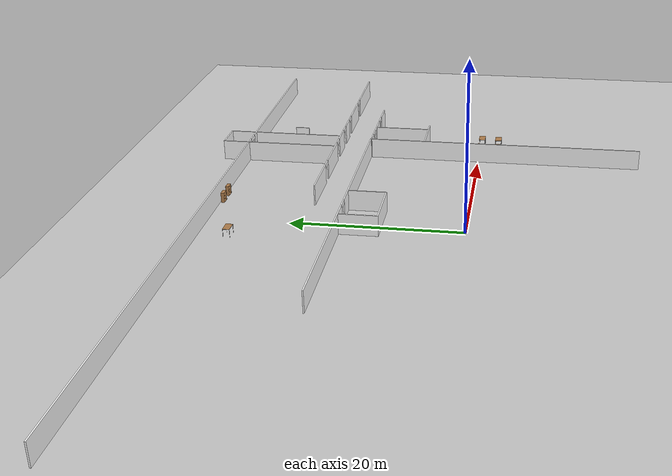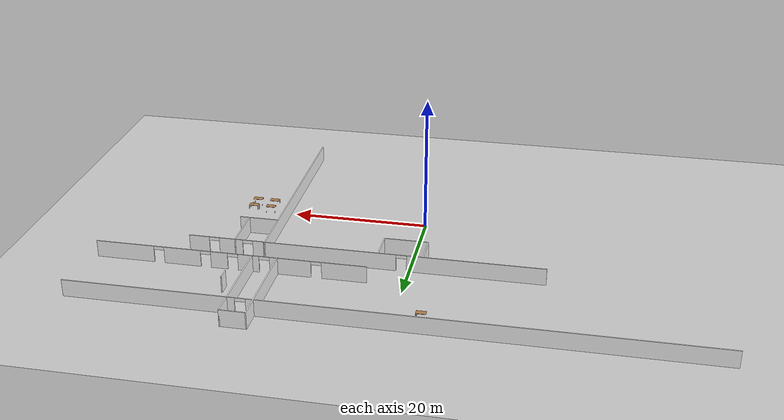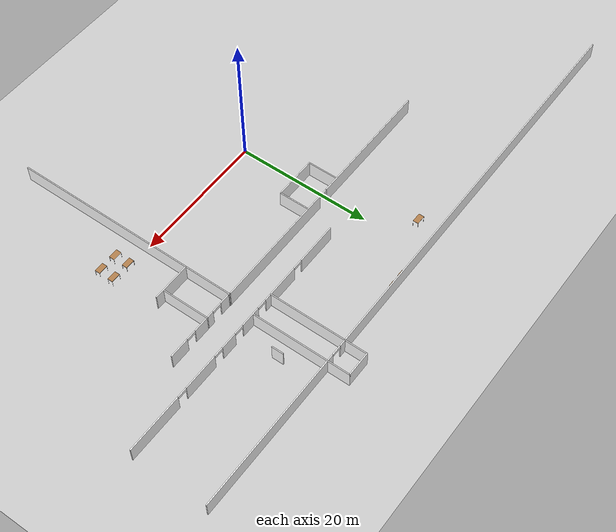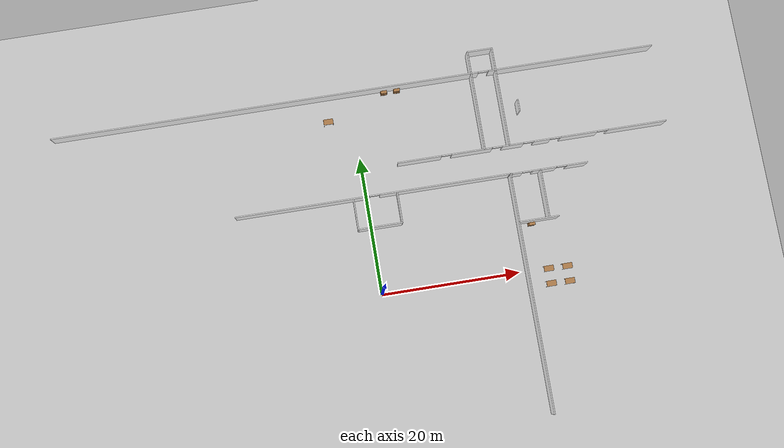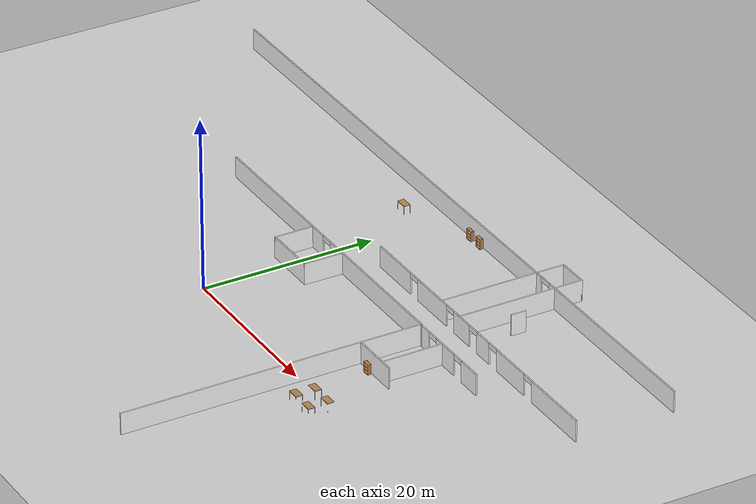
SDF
<sdf version="1.6">
 <world name="default">
  <model name="ground_plane">
   <static>1</static>
   <link name="link">
    <collision name="collision">
     <geometry><plane><normal>0 0 1</normal><size>100 100</size></plane></geometry>
     <surface><friction><ode><mu>100</mu><mu2>50</mu2></ode></friction></surface>
    </collision>
    <visual name="visual">
     <cast_shadows>0</cast_shadows>
     <geometry><plane><normal>0 0 1</normal><size>100 100</size></plane></geometry>
     <material>
      <script>
       <uri>model://office_env/materials/scripts</uri>
       <uri>model://office_env/materials/textures</uri>
       <name>wall</name>
      </script>
     </material>
    </visual>
   </link>
  </model>
  <model name="aule_N">
   <pose>0.1887 -1.4289 0 0 -0 0</pose>
   <link name="Wall_103">
    <pose>26.3919 15.3997 0 0 -0 3.14159</pose>
    <visual name="Wall_103_Visual_0">
     <pose>-4.01282 0 1.25 0 -0 0</pose>
     <geometry><box><size>2.97436 0.15 2.5</size></box></geometry>
     <material>
      <script>
       <uri>model://office_env/materials/scripts</uri>
       <uri>model://office_env/materials/textures</uri>
       <name>wall</name>
      </script>
      <ambient>1 1 1 1</ambient>
     </material>
    </visual>
    <collision name="Wall_103_Collision_0">
     <geometry><box><size>2.97436 0.15 2.5</size></box></geometry>
     <pose>-4.01282 0 1.25 0 -0 0</pose>
    </collision>
    <visual name="Wall_103_Visual_1">
     <pose>0.712222 0 1.25 0 -0 0</pose>
     <geometry><box><size>3.47573 0.15 2.5</size></box></geometry>
     <material>
      <script>
       <uri>model://office_env/materials/scripts</uri>
       <uri>model://office_env/materials/textures</uri>
       <name>wall</name>
      </script>
      <ambient>1 1 1 1</ambient>
     </material>
    </visual>
    <collision name="Wall_103_Collision_1">
     <geometry><box><size>3.47573 0.15 2.5</size></box></geometry>
     <pose>0.712222 0 1.25 0 -0 0</pose>
    </collision>
    <visual name="Wall_103_Visual_2">
     <pose>4.72504 0 1.25 0 -0 0</pose>
     <geometry><box><size>1.54991 0.15 2.5</size></box></geometry>
     <material>
      <script>
       <uri>model://office_env/materials/scripts</uri>
       <uri>model://office_env/materials/textures</uri>
       <name>wall</name>
      </script>
      <ambient>1 1 1 1</ambient>
     </material>
    </visual>
    <collision name="Wall_103_Collision_2">
     <geometry><box><size>1.54991 0.15 2.5</size></box></geometry>
     <pose>4.72504 0 1.25 0 -0 0</pose>
    </collision>
    <visual name="Wall_103_Visual_3">
     <pose>-1.77564 0 2.25 0 -0 0</pose>
     <geometry><box><size>1.5 0.15 0.5</size></box></geometry>
     <material>
      <script>
       <uri>model://office_env/materials/scripts</uri>
       <uri>model://office_env/materials/textures</uri>
       <name>wall</name>
      </script>
      <ambient>1 1 1 1</ambient>
     </material>
    </visual>
    <collision name="Wall_103_Collision_3">
     <geometry><box><size>1.5 0.15 0.5</size></box></geometry>
     <pose>-1.77564 0 2.25 0 -0 0</pose>
    </collision>
    <visual name="Wall_103_Visual_4">
     <pose>3.20009 0 2.25 0 -0 0</pose>
     <geometry><box><size>1.5 0.15 0.5</size></box></geometry>
     <material>
      <script>
       <uri>model://office_env/materials/scripts</uri>
       <uri>model://office_env/materials/textures</uri>
       <name>wall</name>
      </script>
      <ambient>1 1 1 1</ambient>
     </material>
    </visual>
    <collision name="Wall_103_Collision_4">
     <geometry><box><size>1.5 0.15 0.5</size></box></geometry>
     <pose>3.20009 0 2.25 0 -0 0</pose>
    </collision>
   </link>
   <link name="Wall_104">
    <collision name="Wall_104_Collision">
     <geometry><box><size>0.5 0.15 2.5</size></box></geometry>
     <pose>0 0 1.25 0 -0 0</pose>
    </collision>
    <visual name="Wall_104_Visual">
     <pose>0 0 1.25 0 -0 0</pose>
     <geometry><box><size>0.5 0.15 2.5</size></box></geometry>
     <material>
      <script>
       <uri>model://office_env/materials/scripts</uri>
       <uri>model://office_env/materials/textures</uri>
       <name>wall</name>
      </script>
      <ambient>1 1 1 1</ambient>
     </material>
    </visual>
    <pose>20.7919 15.3997 0 0 -0 3.14159</pose>
   </link>
   <link name="Wall_106">
    <collision name="Wall_106_Collision">
     <geometry><box><size>7 0.15 2.5</size></box></geometry>
     <pose>0 0 1.25 0 -0 0</pose>
    </collision>
    <visual name="Wall_106_Visual">
     <pose>0 0 1.25 0 -0 0</pose>
     <geometry><box><size>7 0.15 2.5</size></box></geometry>
     <material>
      <script>
       <uri>model://office_env/materials/scripts</uri>
       <uri>model://office_env/materials/textures</uri>
       <name>wall</name>
      </script>
      <ambient>1 1 1 1</ambient>
     </material>
    </visual>
    <pose>25.0644 11.9766 0 0 0 -1.5708</pose>
   </link>
   <link name="Wall_119">
    <pose>24.6226 19.6001 0 0 -0 0</pose>
    <visual name="Wall_119_Visual_0">
     <pose>-16.4435 0 1.25 0 -0 0</pose>
     <geometry><box><size>6.36296 0.15 2.5</size></box></geometry>
     <material>
      <script>
       <uri>model://office_env/materials/scripts</uri>
       <uri>model://office_env/materials/textures</uri>
       <name>wall</name>
      </script>
      <ambient>1 1 1 1</ambient>
     </material>
    </visual>
    <collision name="Wall_119_Collision_0">
     <geometry><box><size>6.36296 0.15 2.5</size></box></geometry>
     <pose>-16.4435 0 1.25 0 -0 0</pose>
    </collision>
    <visual name="Wall_119_Visual_1">
     <pose>-8.80227 0 1.25 0 -0 0</pose>
     <geometry><box><size>5.91956 0.15 2.5</size></box></geometry>
     <material>
      <script>
       <uri>model://office_env/materials/scripts</uri>
       <uri>model://office_env/materials/textures</uri>
       <name>wall</name>
      </script>
      <ambient>1 1 1 1</ambient>
     </material>
    </visual>
    <collision name="Wall_119_Collision_1">
     <geometry><box><size>5.91956 0.15 2.5</size></box></geometry>
     <pose>-8.80227 0 1.25 0 -0 0</pose>
    </collision>
    <visual name="Wall_119_Visual_2">
     <pose>-2.80072 0 1.25 0 -0 0</pose>
     <geometry><box><size>3.08352 0.15 2.5</size></box></geometry>
     <material>
      <script>
       <uri>model://office_env/materials/scripts</uri>
       <uri>model://office_env/materials/textures</uri>
       <name>wall</name>
      </script>
      <ambient>1 1 1 1</ambient>
     </material>
    </visual>
    <collision name="Wall_119_Collision_2">
     <geometry><box><size>3.08352 0.15 2.5</size></box></geometry>
     <pose>-2.80072 0 1.25 0 -0 0</pose>
    </collision>
    <visual name="Wall_119_Visual_3">
     <pose>1.4683 0 1.25 0 -0 0</pose>
     <geometry><box><size>2.45453 0.15 2.5</size></box></geometry>
     <material>
      <script>
       <uri>model://office_env/materials/scripts</uri>
       <uri>model://office_env/materials/textures</uri>
       <name>wall</name>
      </script>
      <ambient>1 1 1 1</ambient>
     </material>
    </visual>
    <collision name="Wall_119_Collision_3">
     <geometry><box><size>2.45453 0.15 2.5</size></box></geometry>
     <pose>1.4683 0 1.25 0 -0 0</pose>
    </collision>
    <visual name="Wall_119_Visual_4">
     <pose>6.88834 0 1.25 0 -0 0</pose>
     <geometry><box><size>5.38554 0.15 2.5</size></box></geometry>
     <material>
      <script>
       <uri>model://office_env/materials/scripts</uri>
       <uri>model://office_env/materials/textures</uri>
       <name>wall</name>
      </script>
      <ambient>1 1 1 1</ambient>
     </material>
    </visual>
    <collision name="Wall_119_Collision_4">
     <geometry><box><size>5.38554 0.15 2.5</size></box></geometry>
     <pose>6.88834 0 1.25 0 -0 0</pose>
    </collision>
    <visual name="Wall_119_Visual_5">
     <pose>15.3531 0 1.25 0 -0 0</pose>
     <geometry><box><size>8.54389 0.15 2.5</size></box></geometry>
     <material>
      <script>
       <uri>model://office_env/materials/scripts</uri>
       <uri>model://office_env/materials/textures</uri>
       <name>wall</name>
      </script>
      <ambient>1 1 1 1</ambient>
     </material>
    </visual>
    <collision name="Wall_119_Collision_5">
     <geometry><box><size>8.54389 0.15 2.5</size></box></geometry>
     <pose>15.3531 0 1.25 0 -0 0</pose>
    </collision>
    <visual name="Wall_119_Visual_6">
     <pose>-12.512 0 2.25 0 -0 0</pose>
     <geometry><box><size>1.5 0.15 0.5</size></box></geometry>
     <material>
      <script>
       <uri>model://office_env/materials/scripts</uri>
       <uri>model://office_env/materials/textures</uri>
       <name>wall</name>
      </script>
      <ambient>1 1 1 1</ambient>
     </material>
    </visual>
    <collision name="Wall_119_Collision_6">
     <geometry><box><size>1.5 0.15 0.5</size></box></geometry>
     <pose>-12.512 0 2.25 0 -0 0</pose>
    </collision>
    <visual name="Wall_119_Visual_7">
     <pose>-5.09248 0 2.25 0 -0 0</pose>
     <geometry><box><size>1.5 0.15 0.5</size></box></geometry>
     <material>
      <script>
       <uri>model://office_env/materials/scripts</uri>
       <uri>model://office_env/materials/textures</uri>
       <name>wall</name>
      </script>
      <ambient>1 1 1 1</ambient>
     </material>
    </visual>
    <collision name="Wall_119_Collision_7">
     <geometry><box><size>1.5 0.15 0.5</size></box></geometry>
     <pose>-5.09248 0 2.25 0 -0 0</pose>
    </collision>
    <visual name="Wall_119_Visual_8">
     <pose>-0.508963 0 2.25 0 -0 0</pose>
     <geometry><box><size>1.5 0.15 0.5</size></box></geometry>
     <material>
      <script>
       <uri>model://office_env/materials/scripts</uri>
       <uri>model://office_env/materials/textures</uri>
       <name>wall</name>
      </script>
      <ambient>1 1 1 1</ambient>
     </material>
    </visual>
    <collision name="Wall_119_Collision_8">
     <geometry><box><size>1.5 0.15 0.5</size></box></geometry>
     <pose>-0.508963 0 2.25 0 -0 0</pose>
    </collision>
    <visual name="Wall_119_Visual_9">
     <pose>3.44557 0 2.25 0 -0 0</pose>
     <geometry><box><size>1.5 0.15 0.5</size></box></geometry>
     <material>
      <script>
       <uri>model://office_env/materials/scripts</uri>
       <uri>model://office_env/materials/textures</uri>
       <name>wall</name>
      </script>
      <ambient>1 1 1 1</ambient>
     </material>
    </visual>
    <collision name="Wall_119_Collision_9">
     <geometry><box><size>1.5 0.15 0.5</size></box></geometry>
     <pose>3.44557 0 2.25 0 -0 0</pose>
    </collision>
    <visual name="Wall_119_Visual_10">
     <pose>10.3311 0 2.25 0 -0 0</pose>
     <geometry><box><size>1.5 0.15 0.5</size></box></geometry>
     <material>
      <script>
       <uri>model://office_env/materials/scripts</uri>
       <uri>model://office_env/materials/textures</uri>
       <name>wall</name>
      </script>
      <ambient>1 1 1 1</ambient>
     </material>
    </visual>
    <collision name="Wall_119_Collision_10">
     <geometry><box><size>1.5 0.15 0.5</size></box></geometry>
     <pose>10.3311 0 2.25 0 -0 0</pose>
    </collision>
   </link>
   <link name="Wall_142">
    <collision name="Wall_142_Collision">
     <geometry><box><size>14.75 0.15 2.5</size></box></geometry>
     <pose>0 0 1.25 0 -0 0</pose>
    </collision>
    <visual name="Wall_142_Visual">
     <pose>0 0 1.25 0 -0 0</pose>
     <geometry><box><size>14.75 0.15 2.5</size></box></geometry>
     <material>
      <script>
       <uri>model://office_env/materials/scripts</uri>
       <uri>model://office_env/materials/textures</uri>
       <name>wall</name>
      </script>
      <ambient>1 1 1 1</ambient>
     </material>
    </visual>
    <pose>17.6842 26.9006 0 0 -0 1.5708</pose>
   </link>
   <link name="Wall_143">
    <collision name="Wall_143_Collision">
     <geometry><box><size>3.75 0.15 2.5</size></box></geometry>
     <pose>0 0 1.25 0 -0 0</pose>
    </collision>
    <visual name="Wall_143_Visual">
     <pose>0 0 1.25 0 -0 0</pose>
     <geometry><box><size>3.75 0.15 2.5</size></box></geometry>
     <material>
      <script>
       <uri>model://office_env/materials/scripts</uri>
       <uri>model://office_env/materials/textures</uri>
       <name>wall</name>
      </script>
      <ambient>1 1 1 1</ambient>
     </material>
    </visual>
    <pose>19.4842 34.2006 0 0 -0 0</pose>
   </link>
   <link name="Wall_144">
    <collision name="Wall_144_Collision">
     <geometry><box><size>14.75 0.15 2.5</size></box></geometry>
     <pose>0 0 1.25 0 -0 0</pose>
    </collision>
    <visual name="Wall_144_Visual">
     <pose>0 0 1.25 0 -0 0</pose>
     <geometry><box><size>14.75 0.15 2.5</size></box></geometry>
     <material>
      <script>
       <uri>model://office_env/materials/scripts</uri>
       <uri>model://office_env/materials/textures</uri>
       <name>wall</name>
      </script>
      <ambient>1 1 1 1</ambient>
     </material>
    </visual>
    <pose>21.2842 26.9006 0 0 0 -1.5708</pose>
   </link>
   <link name="Wall_147">
    <collision name="Wall_147_Collision">
     <geometry><box><size>4.5 0.15 2.5</size></box></geometry>
     <pose>0 0 1.25 0 -0 0</pose>
    </collision>
    <visual name="Wall_147_Visual">
     <pose>0 0 1.25 0 -0 0</pose>
     <geometry><box><size>4.5 0.15 2.5</size></box></geometry>
     <material>
      <script>
       <uri>model://office_env/materials/scripts</uri>
       <uri>model://office_env/materials/textures</uri>
       <name>wall</name>
      </script>
      <ambient>1 1 1 1</ambient>
     </material>
    </visual>
    <pose>-2.1259 13.1481 0 0 0 -1.5708</pose>
   </link>
   <link name="Wall_148">
    <collision name="Wall_148_Collision">
     <geometry><box><size>6.5 0.15 2.5</size></box></geometry>
     <pose>0 0 1.25 0 -0 0</pose>
    </collision>
    <visual name="Wall_148_Visual">
     <pose>0 0 1.25 0 -0 0</pose>
     <geometry><box><size>6.5 0.15 2.5</size></box></geometry>
     <material>
      <script>
       <uri>model://office_env/materials/scripts</uri>
       <uri>model://office_env/materials/textures</uri>
       <name>wall</name>
      </script>
      <ambient>1 1 1 1</ambient>
     </material>
    </visual>
    <pose>1.0491 10.9731 0 0 -0 0</pose>
   </link>
   <link name="Wall_149">
    <collision name="Wall_149_Collision">
     <geometry><box><size>4.5 0.15 2.5</size></box></geometry>
     <pose>0 0 1.25 0 -0 0</pose>
    </collision>
    <visual name="Wall_149_Visual">
     <pose>0 0 1.25 0 -0 0</pose>
     <geometry><box><size>4.5 0.15 2.5</size></box></geometry>
     <material>
      <script>
       <uri>model://office_env/materials/scripts</uri>
       <uri>model://office_env/materials/textures</uri>
       <name>wall</name>
      </script>
      <ambient>1 1 1 1</ambient>
     </material>
    </visual>
    <pose>4.2241 13.1481 0 0 -0 1.5708</pose>
   </link>
   <link name="Wall_172">
    <collision name="Wall_172_Collision">
     <geometry><box><size>1.75 0.15 2.5</size></box></geometry>
     <pose>0 0 1.25 0 -0 0</pose>
    </collision>
    <visual name="Wall_172_Visual">
     <pose>0 0 1.25 0 -0 0</pose>
     <geometry><box><size>1.75 0.15 2.5</size></box></geometry>
     <material>
      <script>
       <uri>model://office_env/materials/scripts</uri>
       <uri>model://office_env/materials/textures</uri>
       <name>wall</name>
      </script>
      <ambient>1 1 1 1</ambient>
     </material>
    </visual>
    <pose>23.6484 25.1953 0 0 -0 1.5708</pose>
   </link>
   <link name="Wall_42">
    <pose>0.270301 30.9455 0 0 -0 3.14159</pose>
    <visual name="Wall_42_Visual_0">
     <pose>-32.0366 0 1.25 0 -0 0</pose>
     <geometry><box><size>24.1768 0.15 2.5</size></box></geometry>
     <material>
      <script>
       <uri>model://office_env/materials/scripts</uri>
       <uri>model://office_env/materials/textures</uri>
       <name>wall</name>
      </script>
      <ambient>1 1 1 1</ambient>
     </material>
    </visual>
    <collision name="Wall_42_Collision_0">
     <geometry><box><size>24.1768 0.15 2.5</size></box></geometry>
     <pose>-32.0366 0 1.25 0 -0 0</pose>
    </collision>
    <visual name="Wall_42_Visual_1">
     <pose>12.8384 0 1.25 0 -0 0</pose>
     <geometry><box><size>62.5732 0.15 2.5</size></box></geometry>
     <material>
      <script>
       <uri>model://office_env/materials/scripts</uri>
       <uri>model://office_env/materials/textures</uri>
       <name>wall</name>
      </script>
      <ambient>1 1 1 1</ambient>
     </material>
    </visual>
    <collision name="Wall_42_Collision_1">
     <geometry><box><size>62.5732 0.15 2.5</size></box></geometry>
     <pose>12.8384 0 1.25 0 -0 0</pose>
    </collision>
    <visual name="Wall_42_Visual_2">
     <pose>-19.1982 0 2.25 0 -0 0</pose>
     <geometry><box><size>1.5 0.15 0.5</size></box></geometry>
     <material>
      <script>
       <uri>model://office_env/materials/scripts</uri>
       <uri>model://office_env/materials/textures</uri>
       <name>wall</name>
      </script>
      <ambient>1 1 1 1</ambient>
     </material>
    </visual>
    <collision name="Wall_42_Collision_2">
     <geometry><box><size>1.5 0.15 0.5</size></box></geometry>
     <pose>-19.1982 0 2.25 0 -0 0</pose>
    </collision>
   </link>
   <link name="Wall_47">
    <collision name="Wall_47_Collision">
     <geometry><box><size>34.5 0.15 2.5</size></box></geometry>
     <pose>0 0 1.25 0 -0 0</pose>
    </collision>
    <visual name="Wall_47_Visual">
     <pose>0 0 1.25 0 -0 0</pose>
     <geometry><box><size>34.5 0.15 2.5</size></box></geometry>
     <material>
      <script>
       <uri>model://office_env/materials/scripts</uri>
       <uri>model://office_env/materials/textures</uri>
       <name>wall</name>
      </script>
      <ambient>1 1 1 1</ambient>
     </material>
    </visual>
    <pose>20.6929 -1.71111 0 0 -0 1.5708</pose>
   </link>
   <link name="Wall_48">
    <pose>0.767861 15.4639 0 0 -0 3.14159</pose>
    <visual name="Wall_48_Visual_0">
     <pose>-10.4634 0 1.25 0 -0 0</pose>
     <geometry><box><size>19.0732 0.15 2.5</size></box></geometry>
     <material>
      <script>
       <uri>model://office_env/materials/scripts</uri>
       <uri>model://office_env/materials/textures</uri>
       <name>wall</name>
      </script>
      <ambient>1 1 1 1</ambient>
     </material>
    </visual>
    <collision name="Wall_48_Collision_0">
     <geometry><box><size>19.0732 0.15 2.5</size></box></geometry>
     <pose>-10.4634 0 1.25 0 -0 0</pose>
    </collision>
    <visual name="Wall_48_Visual_1">
     <pose>10.2866 0 1.25 0 -0 0</pose>
     <geometry><box><size>19.4268 0.15 2.5</size></box></geometry>
     <material>
      <script>
       <uri>model://office_env/materials/scripts</uri>
       <uri>model://office_env/materials/textures</uri>
       <name>wall</name>
      </script>
      <ambient>1 1 1 1</ambient>
     </material>
    </visual>
    <collision name="Wall_48_Collision_1">
     <geometry><box><size>19.4268 0.15 2.5</size></box></geometry>
     <pose>10.2866 0 1.25 0 -0 0</pose>
    </collision>
    <visual name="Wall_48_Visual_2">
     <pose>-0.176821 0 2.25 0 -0 0</pose>
     <geometry><box><size>1.5 0.15 0.5</size></box></geometry>
     <material>
      <script>
       <uri>model://office_env/materials/scripts</uri>
       <uri>model://office_env/materials/textures</uri>
       <name>wall</name>
      </script>
      <ambient>1 1 1 1</ambient>
     </material>
    </visual>
    <collision name="Wall_48_Collision_2">
     <geometry><box><size>1.5 0.15 0.5</size></box></geometry>
     <pose>-0.176821 0 2.25 0 -0 0</pose>
    </collision>
   </link>
   <link name="Wall_70">
    <collision name="Wall_70_Collision">
     <geometry><box><size>5.75 0.15 2.5</size></box></geometry>
     <pose>0 0 1.25 0 -0 0</pose>
    </collision>
    <visual name="Wall_70_Visual">
     <pose>0 0 1.25 0 -0 0</pose>
     <geometry><box><size>5.75 0.15 2.5</size></box></geometry>
     <material>
      <script>
       <uri>model://office_env/materials/scripts</uri>
       <uri>model://office_env/materials/textures</uri>
       <name>wall</name>
      </script>
      <ambient>1 1 1 1</ambient>
     </material>
    </visual>
    <pose>23.5919 8.40989 0 0 -0 0</pose>
   </link>
   <static>1</static>
  </model>
  <model name="bookshelf_1">
   <static>1</static>
   <link name="link">
    <inertial><mass>1</mass></inertial>
    <collision name="back">
     <pose>0 0.005 0.6 0 -0 0</pose>
     <geometry><box><size>0.9 0.01 1.2</size></box></geometry>
    </collision>
    <visual name="visual1">
     <pose>0 0.005 0.6 0 -0 0</pose>
     <geometry><box><size>0.9 0.01 1.2</size></box></geometry>
     <material>
      <script><uri>file://media/materials/scripts/gazebo.material</uri><name>Gazebo/Wood</name></script>
     </material>
    </visual>
    <collision name="left_side">
     <pose>0.45 -0.195 0.6 0 -0 0</pose>
     <geometry><box><size>0.02 0.4 1.2</size></box></geometry>
    </collision>
    <visual name="visual2">
     <pose>0.45 -0.195 0.6 0 -0 0</pose>
     <geometry><box><size>0.02 0.4 1.2</size></box></geometry>
     <material>
      <script><uri>file://media/materials/scripts/gazebo.material</uri><name>Gazebo/Wood</name></script>
     </material>
    </visual>
    <collision name="right_side">
     <pose>-0.45 -0.195 0.6 0 -0 0</pose>
     <geometry><box><size>0.02 0.4 1.2</size></box></geometry>
    </collision>
    <visual name="visual3">
     <pose>-0.45 -0.195 0.6 0 -0 0</pose>
     <geometry><box><size>0.02 0.4 1.2</size></box></geometry>
     <material>
      <script><uri>file://media/materials/scripts/gazebo.material</uri><name>Gazebo/Wood</name></script>
     </material>
    </visual>
    <collision name="bottom">
     <pose>0 -0.195 0.03 0 -0 0</pose>
     <geometry><box><size>0.88 0.4 0.06</size></box></geometry>
    </collision>
    <visual name="visual4">
     <pose>0 -0.195 0.03 0 -0 0</pose>
     <geometry><box><size>0.88 0.4 0.06</size></box></geometry>
     <material>
      <script><uri>file://media/materials/scripts/gazebo.material</uri><name>Gazebo/Wood</name></script>
     </material>
    </visual>
    <collision name="top">
     <pose>0 -0.195 1.19 0 -0 0</pose>
     <geometry><box><size>0.88 0.4 0.02</size></box></geometry>
    </collision>
    <visual name="visual5">
     <pose>0 -0.195 1.19 0 -0 0</pose>
     <geometry><box><size>0.88 0.4 0.02</size></box></geometry>
     <material>
      <script><uri>file://media/materials/scripts/gazebo.material</uri><name>Gazebo/Wood</name></script>
     </material>
    </visual>
    <collision name="low_shelf">
     <pose>0 -0.195 0.43 0 -0 0</pose>
     <geometry><box><size>0.88 0.4 0.02</size></box></geometry>
    </collision>
    <visual name="visual6">
     <pose>0 -0.195 0.43 0 -0 0</pose>
     <geometry><box><size>0.88 0.4 0.02</size></box></geometry>
     <material>
      <script><uri>file://media/materials/scripts/gazebo.material</uri><name>Gazebo/Wood</name></script>
     </material>
    </visual>
    <collision name="high_shelf">
     <pose>0 -0.195 0.8 0 -0 0</pose>
     <geometry><box><size>0.88 0.4 0.02</size></box></geometry>
    </collision>
    <visual name="visual7">
     <pose>0 -0.195 0.8 0 -0 0</pose>
     <geometry><box><size>0.88 0.4 0.02</size></box></geometry>
     <material>
      <script><uri>file://media/materials/scripts/gazebo.material</uri><name>Gazebo/Wood</name></script>
     </material>
    </visual>
   </link>
   <pose>6.87257 29.3246 0 0 -0 0</pose>
  </model>
  <model name="bookshelf_2">
   <static>1</static>
   <link name="link">
    <inertial><mass>1</mass></inertial>
    <collision name="back">
     <pose>0 0.005 0.6 0 -0 0</pose>
     <geometry><box><size>0.9 0.01 1.2</size></box></geometry>
    </collision>
    <visual name="visual1">
     <pose>0 0.005 0.6 0 -0 0</pose>
     <geometry><box><size>0.9 0.01 1.2</size></box></geometry>
     <material>
      <script><uri>file://media/materials/scripts/gazebo.material</uri><name>Gazebo/Wood</name></script>
     </material>
    </visual>
    <collision name="left_side">
     <pose>0.45 -0.195 0.6 0 -0 0</pose>
     <geometry><box><size>0.02 0.4 1.2</size></box></geometry>
    </collision>
    <visual name="visual2">
     <pose>0.45 -0.195 0.6 0 -0 0</pose>
     <geometry><box><size>0.02 0.4 1.2</size></box></geometry>
     <material>
      <script><uri>file://media/materials/scripts/gazebo.material</uri><name>Gazebo/Wood</name></script>
     </material>
    </visual>
    <collision name="right_side">
     <pose>-0.45 -0.195 0.6 0 -0 0</pose>
     <geometry><box><size>0.02 0.4 1.2</size></box></geometry>
    </collision>
    <visual name="visual3">
     <pose>-0.45 -0.195 0.6 0 -0 0</pose>
     <geometry><box><size>0.02 0.4 1.2</size></box></geometry>
     <material>
      <script><uri>file://media/materials/scripts/gazebo.material</uri><name>Gazebo/Wood</name></script>
     </material>
    </visual>
    <collision name="bottom">
     <pose>0 -0.195 0.03 0 -0 0</pose>
     <geometry><box><size>0.88 0.4 0.06</size></box></geometry>
    </collision>
    <visual name="visual4">
     <pose>0 -0.195 0.03 0 -0 0</pose>
     <geometry><box><size>0.88 0.4 0.06</size></box></geometry>
     <material>
      <script><uri>file://media/materials/scripts/gazebo.material</uri><name>Gazebo/Wood</name></script>
     </material>
    </visual>
    <collision name="top">
     <pose>0 -0.195 1.19 0 -0 0</pose>
     <geometry><box><size>0.88 0.4 0.02</size></box></geometry>
    </collision>
    <visual name="visual5">
     <pose>0 -0.195 1.19 0 -0 0</pose>
     <geometry><box><size>0.88 0.4 0.02</size></box></geometry>
     <material>
      <script><uri>file://media/materials/scripts/gazebo.material</uri><name>Gazebo/Wood</name></script>
     </material>
    </visual>
    <collision name="low_shelf">
     <pose>0 -0.195 0.43 0 -0 0</pose>
     <geometry><box><size>0.88 0.4 0.02</size></box></geometry>
    </collision>
    <visual name="visual6">
     <pose>0 -0.195 0.43 0 -0 0</pose>
     <geometry><box><size>0.88 0.4 0.02</size></box></geometry>
     <material>
      <script><uri>file://media/materials/scripts/gazebo.material</uri><name>Gazebo/Wood</name></script>
     </material>
    </visual>
    <collision name="high_shelf">
     <pose>0 -0.195 0.8 0 -0 0</pose>
     <geometry><box><size>0.88 0.4 0.02</size></box></geometry>
    </collision>
    <visual name="visual7">
     <pose>0 -0.195 0.8 0 -0 0</pose>
     <geometry><box><size>0.88 0.4 0.02</size></box></geometry>
     <material>
      <script><uri>file://media/materials/scripts/gazebo.material</uri><name>Gazebo/Wood</name></script>
     </material>
    </visual>
   </link>
   <pose>4.97402 29.3179 0 0 -0 0</pose>
  </model>
  <model name="bookshelf_5">
   <static>1</static>
   <link name="link">
    <inertial><mass>1</mass></inertial>
    <collision name="back">
     <pose>0 0.005 0.6 0 -0 0</pose>
     <geometry><box><size>0.9 0.01 1.2</size></box></geometry>
    </collision>
    <visual name="visual1">
     <pose>0 0.005 0.6 0 -0 0</pose>
     <geometry><box><size>0.9 0.01 1.2</size></box></geometry>
     <material>
      <script><uri>file://media/materials/scripts/gazebo.material</uri><name>Gazebo/Wood</name></script>
     </material>
    </visual>
    <collision name="left_side">
     <pose>0.45 -0.195 0.6 0 -0 0</pose>
     <geometry><box><size>0.02 0.4 1.2</size></box></geometry>
    </collision>
    <visual name="visual2">
     <pose>0.45 -0.195 0.6 0 -0 0</pose>
     <geometry><box><size>0.02 0.4 1.2</size></box></geometry>
     <material>
      <script><uri>file://media/materials/scripts/gazebo.material</uri><name>Gazebo/Wood</name></script>
     </material>
    </visual>
    <collision name="right_side">
     <pose>-0.45 -0.195 0.6 0 -0 0</pose>
     <geometry><box><size>0.02 0.4 1.2</size></box></geometry>
    </collision>
    <visual name="visual3">
     <pose>-0.45 -0.195 0.6 0 -0 0</pose>
     <geometry><box><size>0.02 0.4 1.2</size></box></geometry>
     <material>
      <script><uri>file://media/materials/scripts/gazebo.material</uri><name>Gazebo/Wood</name></script>
     </material>
    </visual>
    <collision name="bottom">
     <pose>0 -0.195 0.03 0 -0 0</pose>
     <geometry><box><size>0.88 0.4 0.06</size></box></geometry>
    </collision>
    <visual name="visual4">
     <pose>0 -0.195 0.03 0 -0 0</pose>
     <geometry><box><size>0.88 0.4 0.06</size></box></geometry>
     <material>
      <script><uri>file://media/materials/scripts/gazebo.material</uri><name>Gazebo/Wood</name></script>
     </material>
    </visual>
    <collision name="top">
     <pose>0 -0.195 1.19 0 -0 0</pose>
     <geometry><box><size>0.88 0.4 0.02</size></box></geometry>
    </collision>
    <visual name="visual5">
     <pose>0 -0.195 1.19 0 -0 0</pose>
     <geometry><box><size>0.88 0.4 0.02</size></box></geometry>
     <material>
      <script><uri>file://media/materials/scripts/gazebo.material</uri><name>Gazebo/Wood</name></script>
     </material>
    </visual>
    <collision name="low_shelf">
     <pose>0 -0.195 0.43 0 -0 0</pose>
     <geometry><box><size>0.88 0.4 0.02</size></box></geometry>
    </collision>
    <visual name="visual6">
     <pose>0 -0.195 0.43 0 -0 0</pose>
     <geometry><box><size>0.88 0.4 0.02</size></box></geometry>
     <material>
      <script><uri>file://media/materials/scripts/gazebo.material</uri><name>Gazebo/Wood</name></script>
     </material>
    </visual>
    <collision name="high_shelf">
     <pose>0 -0.195 0.8 0 -0 0</pose>
     <geometry><box><size>0.88 0.4 0.02</size></box></geometry>
    </collision>
    <visual name="visual7">
     <pose>0 -0.195 0.8 0 -0 0</pose>
     <geometry><box><size>0.88 0.4 0.02</size></box></geometry>
     <material>
      <script><uri>file://media/materials/scripts/gazebo.material</uri><name>Gazebo/Wood</name></script>
     </material>
    </visual>
   </link>
   <pose>22.8618 6.78931 0 0 -0 0</pose>
  </model>
  <model name="table_5">
   <static>0</static>
   <link name="link">
    <collision name="surface">
     <pose>0 0 1 0 -0 0</pose>
     <geometry><box><size>1.5 0.8 0.03</size></box></geometry>
     <surface><friction><ode><mu>0.6</mu><mu2>0.6</mu2></ode></friction></surface>
    </collision>
    <visual name="visual1">
     <pose>0 0 1 0 -0 0</pose>
     <geometry><box><size>1.4 0.8 0.04</size></box></geometry>
     <material>
      <script><uri>file://media/materials/scripts/gazebo.material</uri><name>Gazebo/Wood</name></script>
     </material>
    </visual>
    <collision name="front_left_leg">
     <pose>0.68 0.38 0.5 0 -0 0</pose>
     <geometry><cylinder><radius>0.02</radius><length>1</length></cylinder></geometry>
    </collision>
    <visual name="front_left_leg">
     <pose>0.68 0.38 0.5 0 -0 0</pose>
     <geometry><cylinder><radius>0.02</radius><length>1</length></cylinder></geometry>
     <material>
      <script>
       <uri>model://office_env/materials/scripts</uri>
       <uri>model://office_env/materials/textures</uri>
       <name>wall</name>
      </script>
     </material>
    </visual>
    <collision name="front_right_leg">
     <pose>0.68 -0.38 0.5 0 -0 0</pose>
     <geometry><cylinder><radius>0.02</radius><length>1</length></cylinder></geometry>
    </collision>
    <visual name="front_right_leg">
     <pose>0.68 -0.38 0.5 0 -0 0</pose>
     <geometry><cylinder><radius>0.02</radius><length>1</length></cylinder></geometry>
     <material>
      <script>
       <uri>model://office_env/materials/scripts</uri>
       <uri>model://office_env/materials/textures</uri>
       <name>wall</name>
      </script>
     </material>
    </visual>
    <collision name="back_right_leg">
     <pose>-0.68 -0.38 0.5 0 -0 0</pose>
     <geometry><cylinder><radius>0.02</radius><length>1</length></cylinder></geometry>
    </collision>
    <visual name="back_right_leg">
     <pose>-0.68 -0.38 0.5 0 -0 0</pose>
     <geometry><cylinder><radius>0.02</radius><length>1</length></cylinder></geometry>
     <material>
      <script>
       <uri>model://office_env/materials/scripts</uri>
       <uri>model://office_env/materials/textures</uri>
       <name>wall</name>
      </script>
     </material>
    </visual>
    <collision name="back_left_leg">
     <pose>-0.68 0.38 0.5 0 -0 0</pose>
     <geometry><cylinder><radius>0.02</radius><length>1</length></cylinder></geometry>
    </collision>
    <visual name="back_left_leg">
     <pose>-0.68 0.38 0.5 0 -0 0</pose>
     <geometry><cylinder><radius>0.02</radius><length>1</length></cylinder></geometry>
     <material>
      <script>
       <uri>model://office_env/materials/scripts</uri>
       <uri>model://office_env/materials/textures</uri>
       <name>wall</name>
      </script>
     </material>
    </visual>
    <inertial>
     <inertia><ixx>1</ixx><ixy>0</ixy><ixz>0</ixz><iyy>1</iyy><iyz>0</iyz><izz>1</izz></inertia>
     <mass>1</mass>
    </inertial>
   </link>
   <pose>-3.71491 26.0335 0.009992 0 -0 0</pose>
  </model>
  <model name="table_9">
   <static>0</static>
   <link name="link">
    <collision name="surface">
     <pose>0 0 1 0 -0 0</pose>
     <geometry><box><size>1.5 0.8 0.03</size></box></geometry>
     <surface><friction><ode><mu>0.6</mu><mu2>0.6</mu2></ode></friction></surface>
    </collision>
    <visual name="visual1">
     <pose>0 0 1 0 -0 0</pose>
     <geometry><box><size>1.4 0.8 0.04</size></box></geometry>
     <material>
      <script><uri>file://media/materials/scripts/gazebo.material</uri><name>Gazebo/Wood</name></script>
     </material>
    </visual>
    <collision name="front_left_leg">
     <pose>0.68 0.38 0.5 0 -0 0</pose>
     <geometry><cylinder><radius>0.02</radius><length>1</length></cylinder></geometry>
    </collision>
    <visual name="front_left_leg">
     <pose>0.68 0.38 0.5 0 -0 0</pose>
     <geometry><cylinder><radius>0.02</radius><length>1</length></cylinder></geometry>
     <material>
      <script>
       <uri>model://office_env/materials/scripts</uri>
       <uri>model://office_env/materials/textures</uri>
       <name>wall</name>
      </script>
     </material>
    </visual>
    <collision name="front_right_leg">
     <pose>0.68 -0.38 0.5 0 -0 0</pose>
     <geometry><cylinder><radius>0.02</radius><length>1</length></cylinder></geometry>
    </collision>
    <visual name="front_right_leg">
     <pose>0.68 -0.38 0.5 0 -0 0</pose>
     <geometry><cylinder><radius>0.02</radius><length>1</length></cylinder></geometry>
     <material>
      <script>
       <uri>model://office_env/materials/scripts</uri>
       <uri>model://office_env/materials/textures</uri>
       <name>wall</name>
      </script>
     </material>
    </visual>
    <collision name="back_right_leg">
     <pose>-0.68 -0.38 0.5 0 -0 0</pose>
     <geometry><cylinder><radius>0.02</radius><length>1</length></cylinder></geometry>
    </collision>
    <visual name="back_right_leg">
     <pose>-0.68 -0.38 0.5 0 -0 0</pose>
     <geometry><cylinder><radius>0.02</radius><length>1</length></cylinder></geometry>
     <material>
      <script>
       <uri>model://office_env/materials/scripts</uri>
       <uri>model://office_env/materials/textures</uri>
       <name>wall</name>
      </script>
     </material>
    </visual>
    <collision name="back_left_leg">
     <pose>-0.68 0.38 0.5 0 -0 0</pose>
     <geometry><cylinder><radius>0.02</radius><length>1</length></cylinder></geometry>
    </collision>
    <visual name="back_left_leg">
     <pose>-0.68 0.38 0.5 0 -0 0</pose>
     <geometry><cylinder><radius>0.02</radius><length>1</length></cylinder></geometry>
     <material>
      <script>
       <uri>model://office_env/materials/scripts</uri>
       <uri>model://office_env/materials/textures</uri>
       <name>wall</name>
      </script>
     </material>
    </visual>
    <inertial>
     <inertia><ixx>1</ixx><ixy>0</ixy><ixz>0</ixz><iyy>1</iyy><iyz>0</iyz><izz>1</izz></inertia>
     <mass>1</mass>
    </inertial>
   </link>
   <pose>26.7826 -0.176474 0.009992 0 -0 0</pose>
  </model>
  <model name="table_10">
   <static>0</static>
   <link name="link">
    <collision name="surface">
     <pose>0 0 1 0 -0 0</pose>
     <geometry><box><size>1.5 0.8 0.03</size></box></geometry>
     <surface><friction><ode><mu>0.6</mu><mu2>0.6</mu2></ode></friction></surface>
    </collision>
    <visual name="visual1">
     <pose>0 0 1 0 -0 0</pose>
     <geometry><box><size>1.4 0.8 0.04</size></box></geometry>
     <material>
      <script><uri>file://media/materials/scripts/gazebo.material</uri><name>Gazebo/Wood</name></script>
     </material>
    </visual>
    <collision name="front_left_leg">
     <pose>0.68 0.38 0.5 0 -0 0</pose>
     <geometry><cylinder><radius>0.02</radius><length>1</length></cylinder></geometry>
    </collision>
    <visual name="front_left_leg">
     <pose>0.68 0.38 0.5 0 -0 0</pose>
     <geometry><cylinder><radius>0.02</radius><length>1</length></cylinder></geometry>
     <material>
      <script>
       <uri>model://office_env/materials/scripts</uri>
       <uri>model://office_env/materials/textures</uri>
       <name>wall</name>
      </script>
     </material>
    </visual>
    <collision name="front_right_leg">
     <pose>0.68 -0.38 0.5 0 -0 0</pose>
     <geometry><cylinder><radius>0.02</radius><length>1</length></cylinder></geometry>
    </collision>
    <visual name="front_right_leg">
     <pose>0.68 -0.38 0.5 0 -0 0</pose>
     <geometry><cylinder><radius>0.02</radius><length>1</length></cylinder></geometry>
     <material>
      <script>
       <uri>model://office_env/materials/scripts</uri>
       <uri>model://office_env/materials/textures</uri>
       <name>wall</name>
      </script>
     </material>
    </visual>
    <collision name="back_right_leg">
     <pose>-0.68 -0.38 0.5 0 -0 0</pose>
     <geometry><cylinder><radius>0.02</radius><length>1</length></cylinder></geometry>
    </collision>
    <visual name="back_right_leg">
     <pose>-0.68 -0.38 0.5 0 -0 0</pose>
     <geometry><cylinder><radius>0.02</radius><length>1</length></cylinder></geometry>
     <material>
      <script>
       <uri>model://office_env/materials/scripts</uri>
       <uri>model://office_env/materials/textures</uri>
       <name>wall</name>
      </script>
     </material>
    </visual>
    <collision name="back_left_leg">
     <pose>-0.68 0.38 0.5 0 -0 0</pose>
     <geometry><cylinder><radius>0.02</radius><length>1</length></cylinder></geometry>
    </collision>
    <visual name="back_left_leg">
     <pose>-0.68 0.38 0.5 0 -0 0</pose>
     <geometry><cylinder><radius>0.02</radius><length>1</length></cylinder></geometry>
     <material>
      <script>
       <uri>model://office_env/materials/scripts</uri>
       <uri>model://office_env/materials/textures</uri>
       <name>wall</name>
      </script>
     </material>
    </visual>
    <inertial>
     <inertia><ixx>1</ixx><ixy>0</ixy><ixz>0</ixz><iyy>1</iyy><iyz>0</iyz><izz>1</izz></inertia>
     <mass>1</mass>
    </inertial>
   </link>
   <pose>26.7519 -2.34116 0.009992 0 -0 0</pose>
  </model>
  <model name="table_12">
   <static>0</static>
   <link name="link">
    <collision name="surface">
     <pose>0 0 1 0 -0 0</pose>
     <geometry><box><size>1.5 0.8 0.03</size></box></geometry>
     <surface><friction><ode><mu>0.6</mu><mu2>0.6</mu2></ode></friction></surface>
    </collision>
    <visual name="visual1">
     <pose>0 0 1 0 -0 0</pose>
     <geometry><box><size>1.4 0.8 0.04</size></box></geometry>
     <material>
      <script><uri>file://media/materials/scripts/gazebo.material</uri><name>Gazebo/Wood</name></script>
     </material>
    </visual>
    <collision name="front_left_leg">
     <pose>0.68 0.38 0.5 0 -0 0</pose>
     <geometry><cylinder><radius>0.02</radius><length>1</length></cylinder></geometry>
    </collision>
    <visual name="front_left_leg">
     <pose>0.68 0.38 0.5 0 -0 0</pose>
     <geometry><cylinder><radius>0.02</radius><length>1</length></cylinder></geometry>
     <material>
      <script>
       <uri>model://office_env/materials/scripts</uri>
       <uri>model://office_env/materials/textures</uri>
       <name>wall</name>
      </script>
     </material>
    </visual>
    <collision name="front_right_leg">
     <pose>0.68 -0.38 0.5 0 -0 0</pose>
     <geometry><cylinder><radius>0.02</radius><length>1</length></cylinder></geometry>
    </collision>
    <visual name="front_right_leg">
     <pose>0.68 -0.38 0.5 0 -0 0</pose>
     <geometry><cylinder><radius>0.02</radius><length>1</length></cylinder></geometry>
     <material>
      <script>
       <uri>model://office_env/materials/scripts</uri>
       <uri>model://office_env/materials/textures</uri>
       <name>wall</name>
      </script>
     </material>
    </visual>
    <collision name="back_right_leg">
     <pose>-0.68 -0.38 0.5 0 -0 0</pose>
     <geometry><cylinder><radius>0.02</radius><length>1</length></cylinder></geometry>
    </collision>
    <visual name="back_right_leg">
     <pose>-0.68 -0.38 0.5 0 -0 0</pose>
     <geometry><cylinder><radius>0.02</radius><length>1</length></cylinder></geometry>
     <material>
      <script>
       <uri>model://office_env/materials/scripts</uri>
       <uri>model://office_env/materials/textures</uri>
       <name>wall</name>
      </script>
     </material>
    </visual>
    <collision name="back_left_leg">
     <pose>-0.68 0.38 0.5 0 -0 0</pose>
     <geometry><cylinder><radius>0.02</radius><length>1</length></cylinder></geometry>
    </collision>
    <visual name="back_left_leg">
     <pose>-0.68 0.38 0.5 0 -0 0</pose>
     <geometry><cylinder><radius>0.02</radius><length>1</length></cylinder></geometry>
     <material>
      <script>
       <uri>model://office_env/materials/scripts</uri>
       <uri>model://office_env/materials/textures</uri>
       <name>wall</name>
      </script>
     </material>
    </visual>
    <inertial>
     <inertia><ixx>1</ixx><ixy>0</ixy><ixz>0</ixz><iyy>1</iyy><iyz>0</iyz><izz>1</izz></inertia>
     <mass>1</mass>
    </inertial>
   </link>
   <pose>24.0927 -0.121888 0.009992 0 -0 0</pose>
  </model>
  <model name="table_13">
   <static>0</static>
   <link name="link">
    <collision name="surface">
     <pose>0 0 1 0 -0 0</pose>
     <geometry><box><size>1.5 0.8 0.03</size></box></geometry>
     <surface><friction><ode><mu>0.6</mu><mu2>0.6</mu2></ode></friction></surface>
    </collision>
    <visual name="visual1">
     <pose>0 0 1 0 -0 0</pose>
     <geometry><box><size>1.4 0.8 0.04</size></box></geometry>
     <material>
      <script><uri>file://media/materials/scripts/gazebo.material</uri><name>Gazebo/Wood</name></script>
     </material>
    </visual>
    <collision name="front_left_leg">
     <pose>0.68 0.38 0.5 0 -0 0</pose>
     <geometry><cylinder><radius>0.02</radius><length>1</length></cylinder></geometry>
    </collision>
    <visual name="front_left_leg">
     <pose>0.68 0.38 0.5 0 -0 0</pose>
     <geometry><cylinder><radius>0.02</radius><length>1</length></cylinder></geometry>
     <material>
      <script>
       <uri>model://office_env/materials/scripts</uri>
       <uri>model://office_env/materials/textures</uri>
       <name>wall</name>
      </script>
     </material>
    </visual>
    <collision name="front_right_leg">
     <pose>0.68 -0.38 0.5 0 -0 0</pose>
     <geometry><cylinder><radius>0.02</radius><length>1</length></cylinder></geometry>
    </collision>
    <visual name="front_right_leg">
     <pose>0.68 -0.38 0.5 0 -0 0</pose>
     <geometry><cylinder><radius>0.02</radius><length>1</length></cylinder></geometry>
     <material>
      <script>
       <uri>model://office_env/materials/scripts</uri>
       <uri>model://office_env/materials/textures</uri>
       <name>wall</name>
      </script>
     </material>
    </visual>
    <collision name="back_right_leg">
     <pose>-0.68 -0.38 0.5 0 -0 0</pose>
     <geometry><cylinder><radius>0.02</radius><length>1</length></cylinder></geometry>
    </collision>
    <visual name="back_right_leg">
     <pose>-0.68 -0.38 0.5 0 -0 0</pose>
     <geometry><cylinder><radius>0.02</radius><length>1</length></cylinder></geometry>
     <material>
      <script>
       <uri>model://office_env/materials/scripts</uri>
       <uri>model://office_env/materials/textures</uri>
       <name>wall</name>
      </script>
     </material>
    </visual>
    <collision name="back_left_leg">
     <pose>-0.68 0.38 0.5 0 -0 0</pose>
     <geometry><cylinder><radius>0.02</radius><length>1</length></cylinder></geometry>
    </collision>
    <visual name="back_left_leg">
     <pose>-0.68 0.38 0.5 0 -0 0</pose>
     <geometry><cylinder><radius>0.02</radius><length>1</length></cylinder></geometry>
     <material>
      <script>
       <uri>model://office_env/materials/scripts</uri>
       <uri>model://office_env/materials/textures</uri>
       <name>wall</name>
      </script>
     </material>
    </visual>
    <inertial>
     <inertia><ixx>1</ixx><ixy>0</ixy><ixz>0</ixz><iyy>1</iyy><iyz>0</iyz><izz>1</izz></inertia>
     <mass>1</mass>
    </inertial>
   </link>
   <pose>24.0865 -2.28148 0.009992 0 -0 0</pose>
  </model>
 </world>
</sdf>
